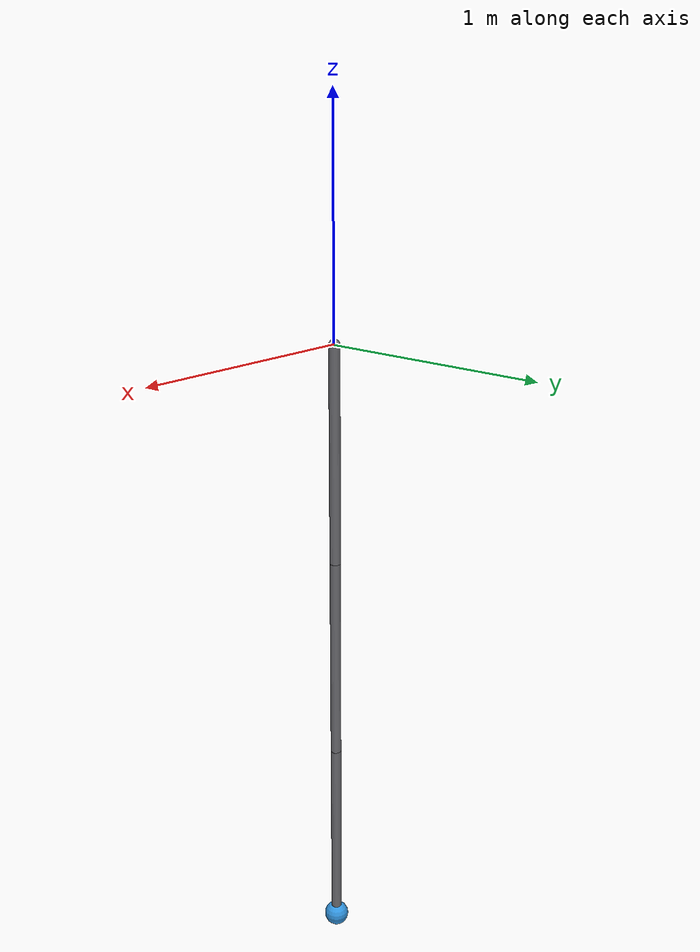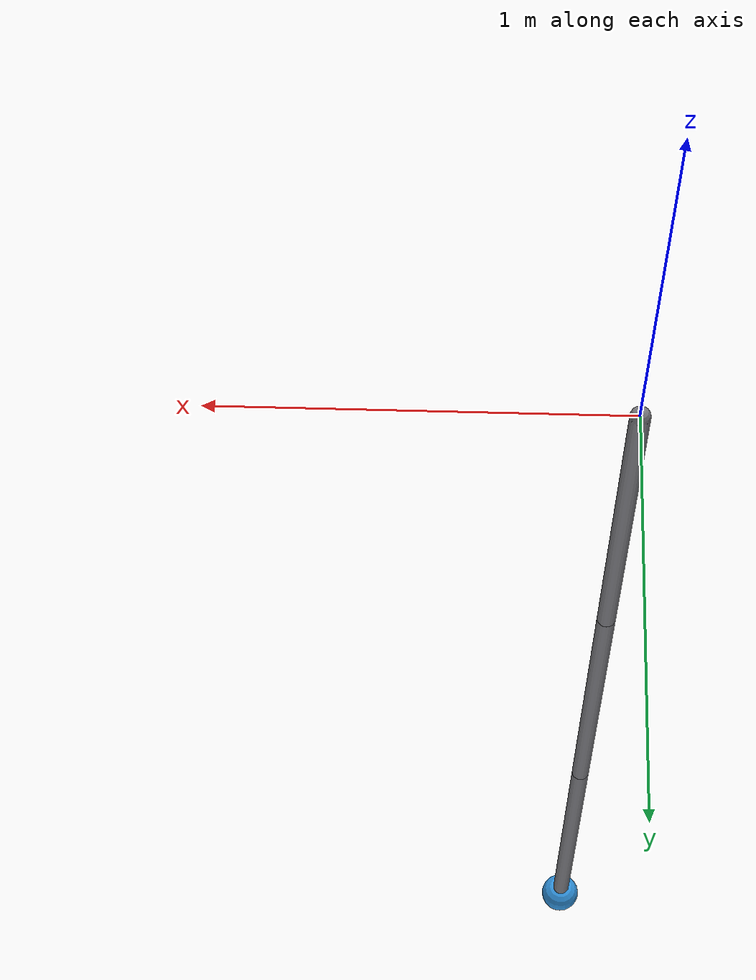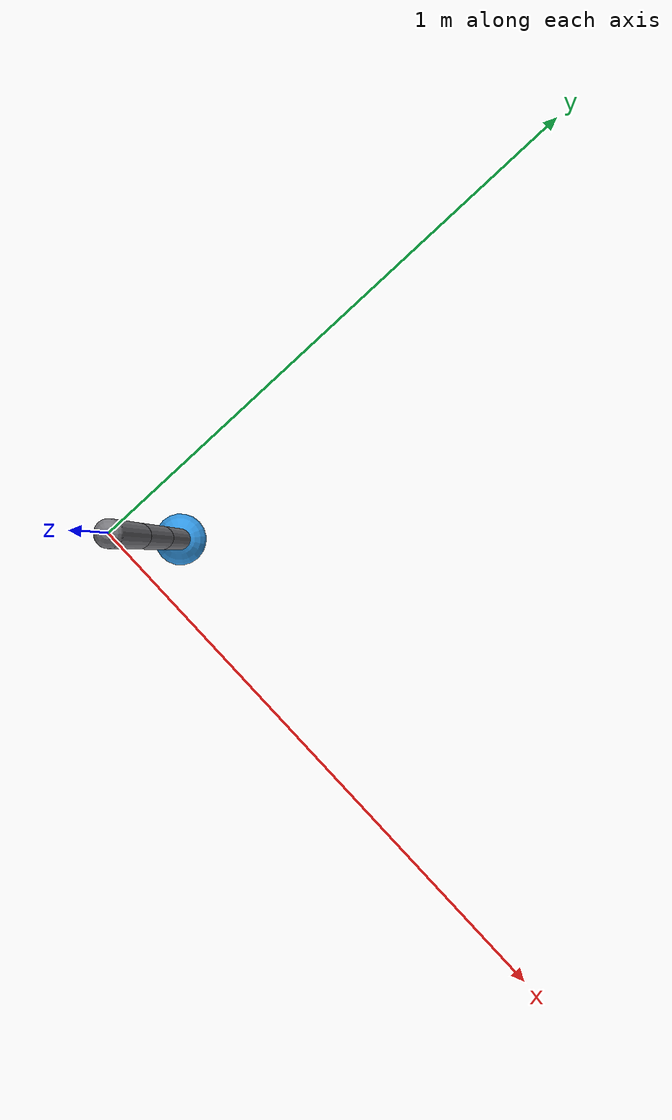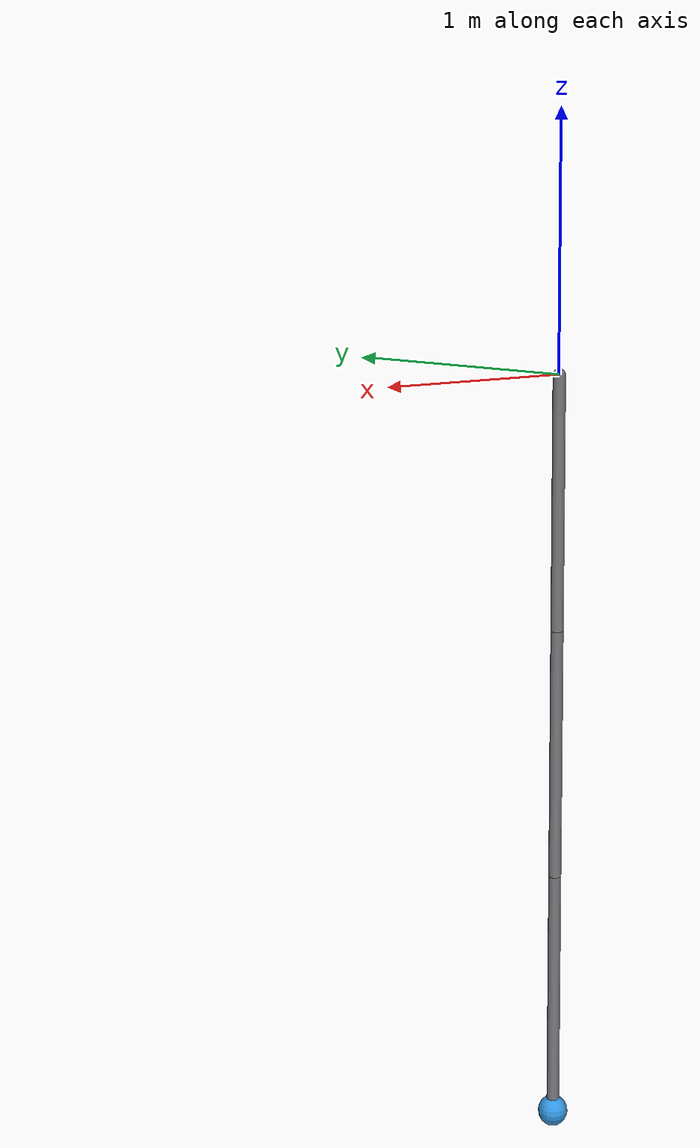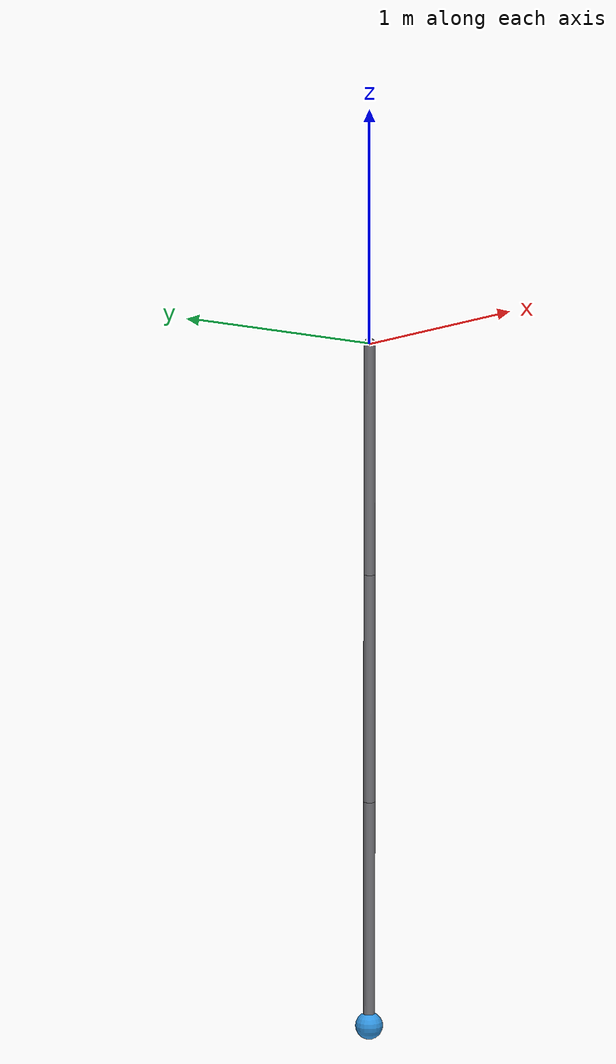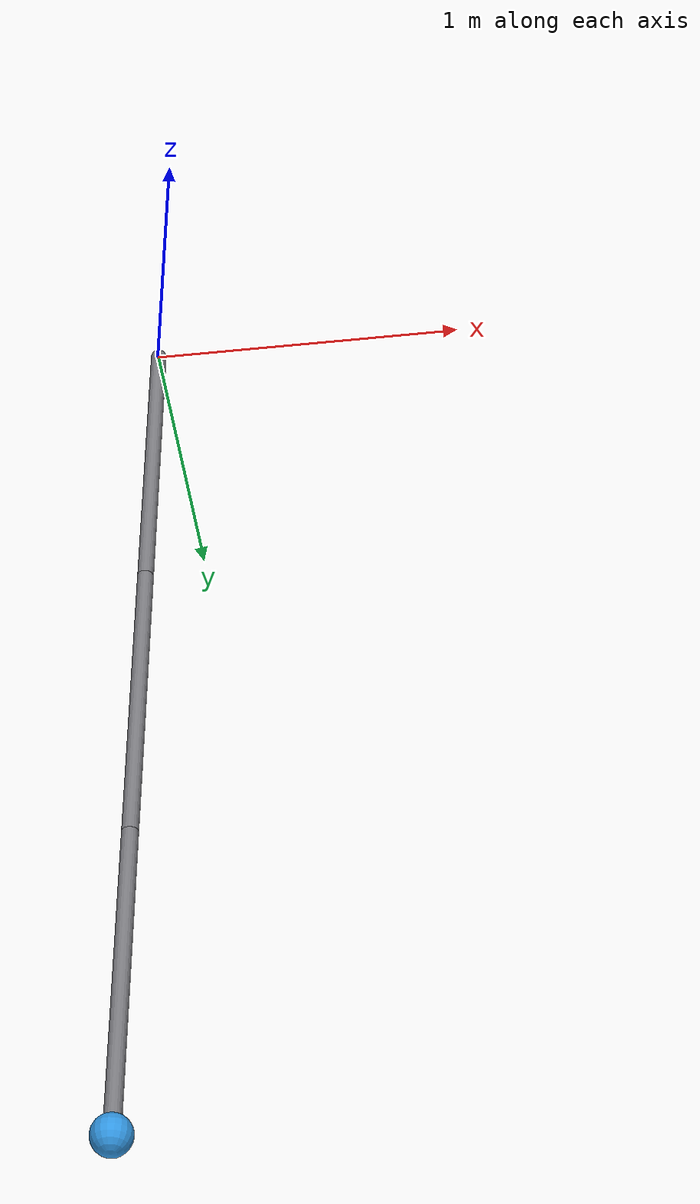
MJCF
<mujoco model="hybrid-vs-fd">
  <compiler angle="radian"/>
  <option gravity="0 0 -9.81" timestep="0.002"/>

  <default>
    <geom contype="0" conaffinity="0"/>
  </default>

  <worldbody>
    <body name="link1" pos="0 0 0">
      <joint name="j1" type="hinge" axis="0 1 0"/>
      <inertial pos="0 0 -0.5" mass="1.0" diaginertia="0.1 0.1 0.001"/>
      <geom name="rod1" type="capsule" size="0.025"
            fromto="0 0 0  0 0 -1" rgba="0.48 0.48 0.50 1"/>

      <body name="link2" pos="0 0 -1">
        <joint name="j2" type="hinge" axis="0 1 0"/>
        <inertial pos="0 0 -0.5" mass="1.0" diaginertia="0.1 0.1 0.001"/>
        <geom name="rod2" type="capsule" size="0.025"
              fromto="0 0 0  0 0 -1" rgba="0.48 0.48 0.50 1"/>

        <body name="link3" pos="0 0 -1">
          <joint name="j3" type="hinge" axis="0 1 0"/>
          <inertial pos="0 0 -0.5" mass="1.0" diaginertia="0.1 0.1 0.001"/>
          <geom name="rod3" type="capsule" size="0.025"
                fromto="0 0 0  0 0 -1" rgba="0.48 0.48 0.50 1"/>
          <geom name="tip" type="sphere" size="0.06"
                pos="0 0 -1" rgba="0.2 0.6 0.9 1"/>
        </body>
      </body>
    </body>
  </worldbody>
</mujoco>
